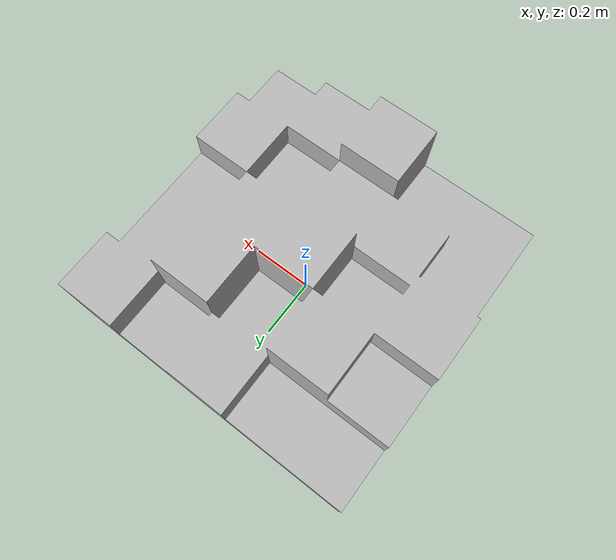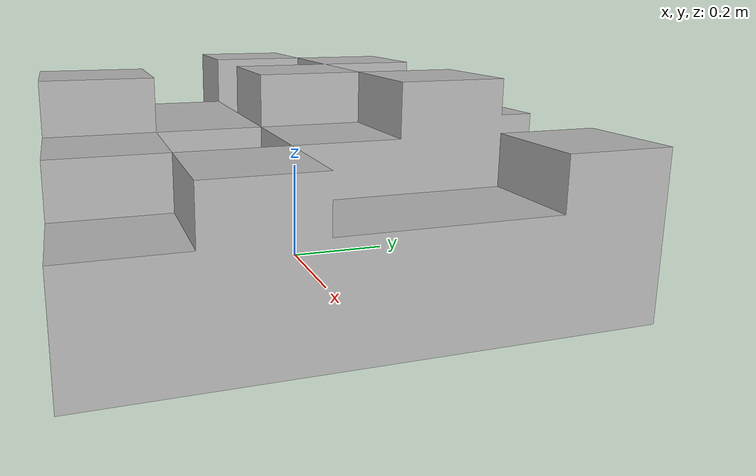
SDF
<?xml version="1.0" encoding="UTF-8" ?>
<sdf version="1.4">
  <!--Generated by blend2world.py-->
    <model name="blocks">
      <pose>0.0 0.0 0.0  0.0 0.0 0.0</pose>
      <static>true</static>
      <link name="body">
        <collision name="collision">
          <geometry>
            <mesh>
              <uri>file://blocks/meshes/blocks.dae</uri>
              <scale>1 1 1</scale>
            </mesh>
          </geometry>
        </collision>
        <visual name="visual">
          <geometry>
            <mesh>
              <uri>file://blocks/meshes/blocks.dae</uri>
              <scale>1 1 1</scale>
            </mesh>
          </geometry>
        </visual>
      </link>
    </model>
</sdf>
